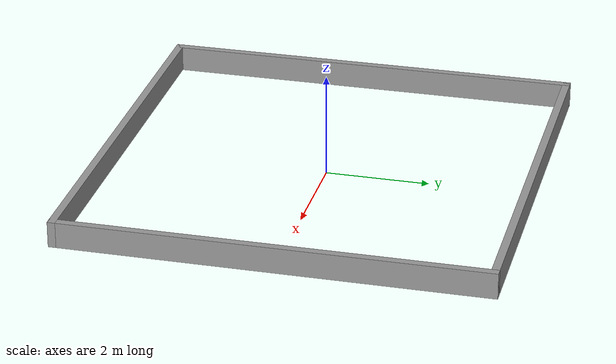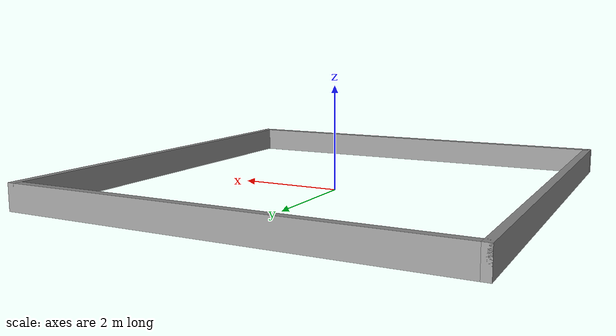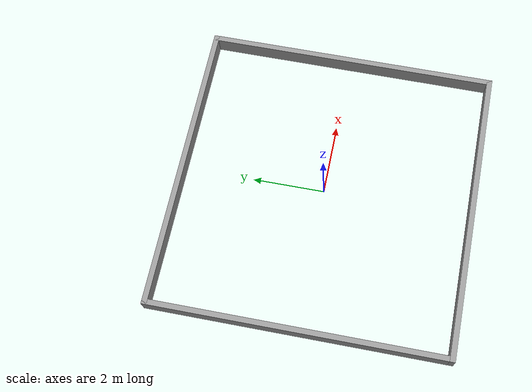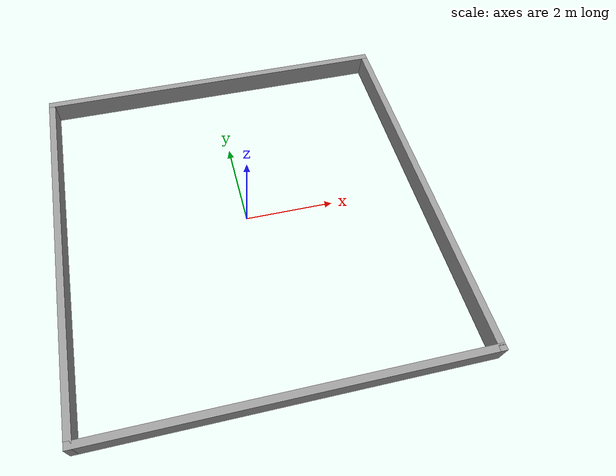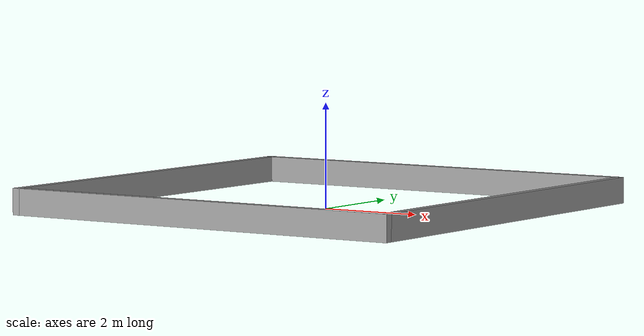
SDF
<?xml version='1.0'?>
<sdf version='1.6'>
  <model name='Untitled'>
    <pose frame=''>-0.015 -0.062 0 0 -0 0</pose>
    <link name='Wall_0'>
      <collision name='Wall_0_Collision'>
        <geometry>
          <box>
            <size>8.25 0.15 0.5</size>
          </box>
        </geometry>
        <pose frame=''>0 0 0.25 0 -0 0</pose>
      </collision>
      <visual name='Wall_0_Visual'>
        <pose frame=''>0 0 0.25 0 -0 0</pose>
        <geometry>
          <box>
            <size>8.25 0.15 0.5</size>
          </box>
        </geometry>
        <material>
          <script>
            <uri>file://media/materials/scripts/gazebo.material</uri>
            <name>Gazebo/Grey</name>
          </script>
          <ambient>1 1 1 1</ambient>
        </material>
        <meta>
          <layer>0</layer>
        </meta>
      </visual>
      <pose frame=''>4.05 -0 0 0 -0 -1.5708</pose>
    </link>
    <link name='Wall_1'>
      <collision name='Wall_1_Collision'>
        <geometry>
          <box>
            <size>8.25 0.15 0.5</size>
          </box>
        </geometry>
        <pose frame=''>0 0 0.25 0 -0 0</pose>
      </collision>
      <visual name='Wall_1_Visual'>
        <pose frame=''>0 0 0.25 0 -0 0</pose>
        <geometry>
          <box>
            <size>8.25 0.15 0.5</size>
          </box>
        </geometry>
        <material>
          <script>
            <uri>file://media/materials/scripts/gazebo.material</uri>
            <name>Gazebo/Grey</name>
          </script>
          <ambient>1 1 1 1</ambient>
        </material>
        <meta>
          <layer>0</layer>
        </meta>
      </visual>
      <pose frame=''>0 -4.05 0 0 -0 3.14159</pose>
    </link>
    <link name='Wall_2'>
      <collision name='Wall_2_Collision'>
        <geometry>
          <box>
            <size>8.25 0.15 0.5</size>
          </box>
        </geometry>
        <pose frame=''>0 0 0.25 0 -0 0</pose>
      </collision>
      <visual name='Wall_2_Visual'>
        <pose frame=''>0 0 0.25 0 -0 0</pose>
        <geometry>
          <box>
            <size>8.25 0.15 0.5</size>
          </box>
        </geometry>
        <material>
          <script>
            <uri>file://media/materials/scripts/gazebo.material</uri>
            <name>Gazebo/Grey</name>
          </script>
          <ambient>1 1 1 1</ambient>
        </material>
        <meta>
          <layer>0</layer>
        </meta>
      </visual>
      <pose frame=''>-4.05 -0 0 0 -0 1.5708</pose>
    </link>
    <link name='Wall_3'>
      <collision name='Wall_3_Collision'>
        <geometry>
          <box>
            <size>8.25 0.15 0.5</size>
          </box>
        </geometry>
        <pose frame=''>0 0 0.25 0 -0 0</pose>
      </collision>
      <visual name='Wall_3_Visual'>
        <pose frame=''>0 0 0.25 0 -0 0</pose>
        <geometry>
          <box>
            <size>8.25 0.15 0.5</size>
          </box>
        </geometry>
        <material>
          <script>
            <uri>file://media/materials/scripts/gazebo.material</uri>
            <name>Gazebo/Grey</name>
          </script>
          <ambient>1 1 1 1</ambient>
        </material>
        <meta>
          <layer>0</layer>
        </meta>
      </visual>
      <pose frame=''>0 4.05 0 0 -0 0</pose>
    </link>
    <static>1</static>
  </model>
</sdf>
